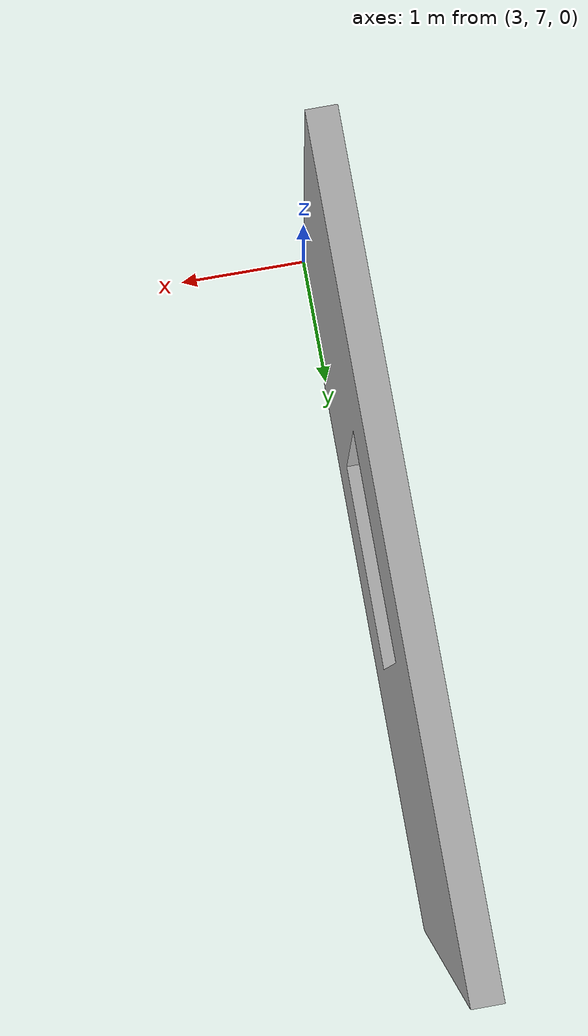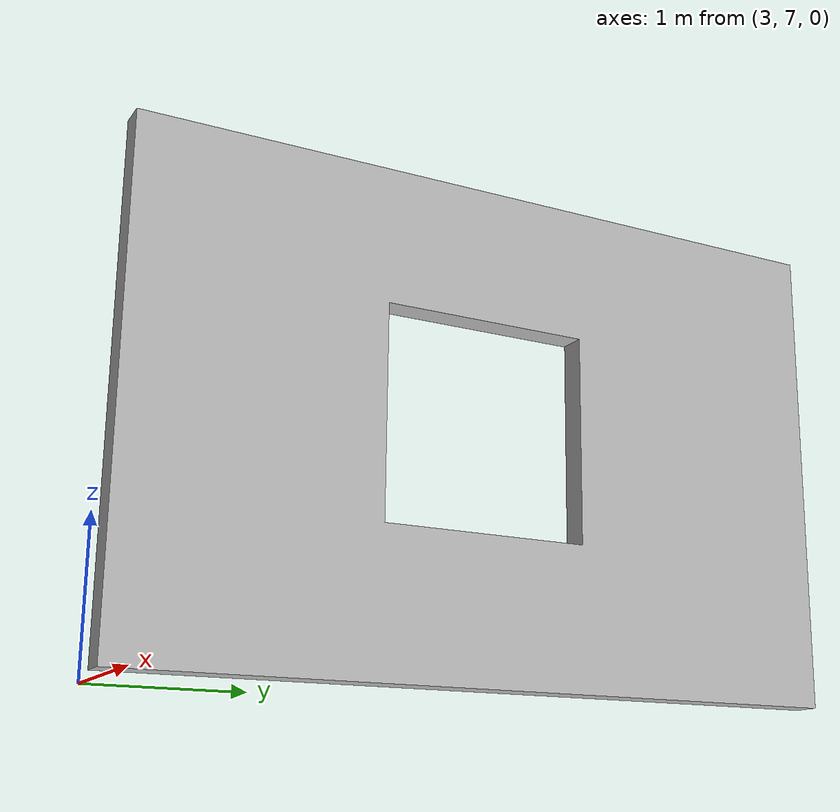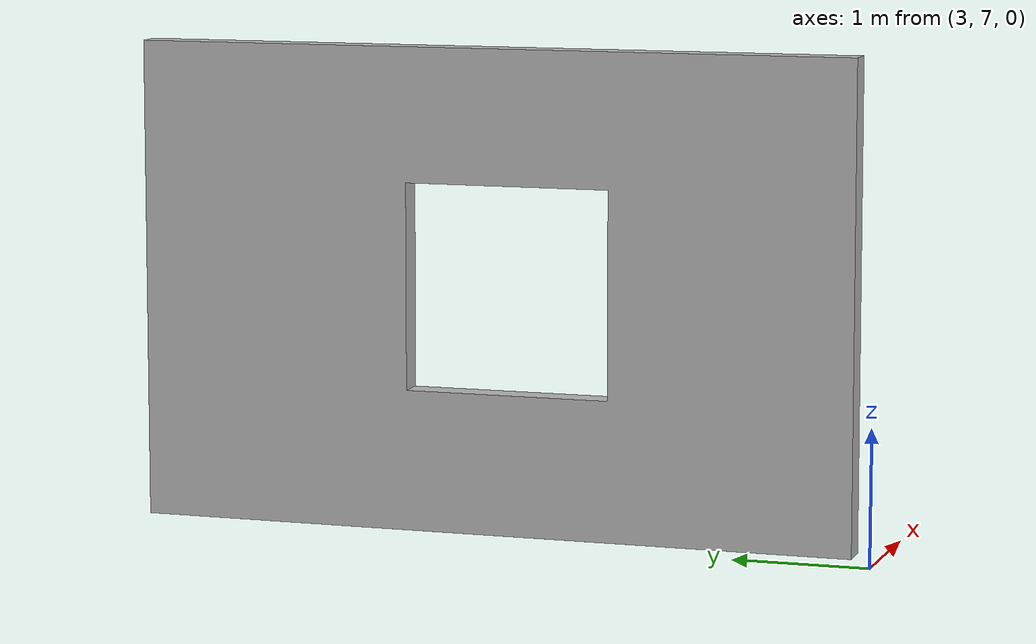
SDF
<?xml version="1.0"?>
<sdf version="1.5">
    <model name="house3">
        <static>true</static>
        <link name="link">
            <collision name="collision1">
                <pose>0 12.5 0 0 0 0</pose>
                <geometry>
                    <mesh>
                        <uri>model://house_scene_1_wall_w_window/meshes/scene_1_wall_w_window.dae</uri>
                    </mesh>
                </geometry>
            </collision>
            <visual name="visual_walls3">
              <pose>0 12.5 0 0 0 0</pose>
              <geometry>
              <mesh>
                 <uri>model://house_scene_1_wall_w_window/meshes/scene_1_wall_w_window.dae</uri>
              </mesh>
              </geometry>
              <material>
                  <script>
                      <uri>model://house_scene_1_wall_w_window/materials/scripts</uri>
                      <uri>model://house_scene_1_wall_w_window/materials/textures</uri>
                      <name>houseMat/Diffuse</name>
                  </script>
              </material>
             </visual>

        </link>
    </model>
</sdf>
